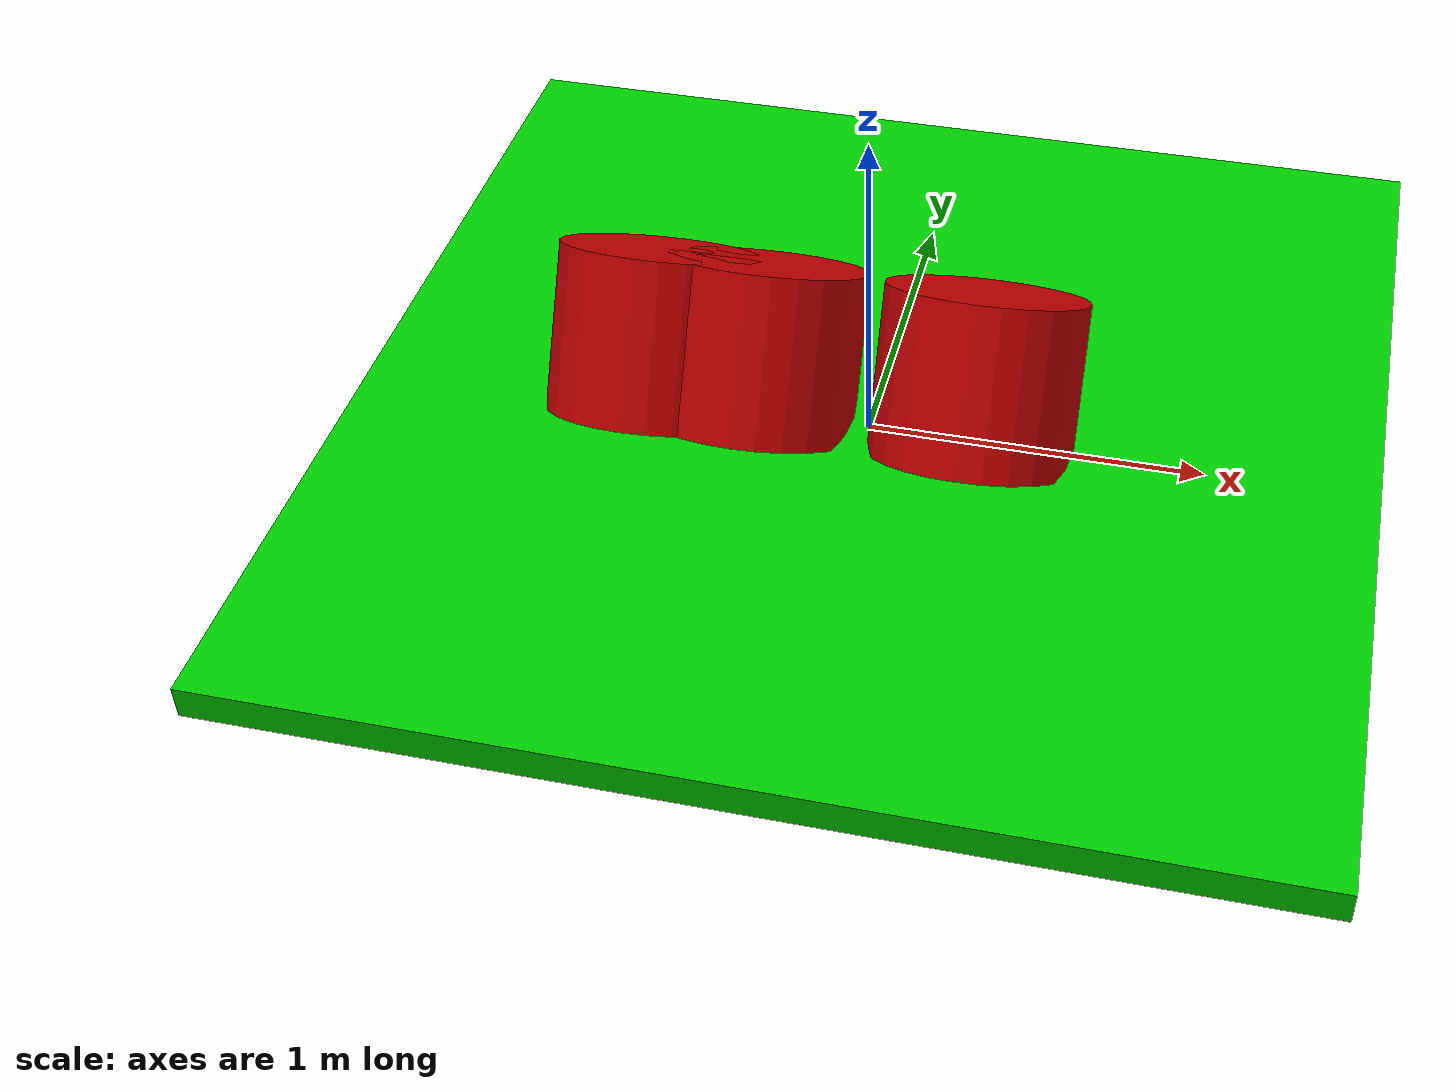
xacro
<?xml version="1.0"?>
<robot xmlns:xacro="http://www.ros.org/wiki/xacro" name="robot">
    <xacro:property name="PI" value="3.1416"/>

    <!-- Define material named "black" with RGBA color values -->
    <material name="black">
        <color rgba="0.0 0.0 0.0 1.0" />
    </material>

    <!-- Define material named "blue" with RGBA color values -->
    <material name="blue">
        <color rgba="0.0 0.0 0.8 1.0" />
    </material>

    <!-- Define material named "green" with RGBA color values -->
    <material name="green">
        <color rgba="0.0 0.8 0.0 1.0" />
    </material>

    <!-- Define material named "red" with RGBA color values -->
    <material name="red">
        <color rgba="0.8 0.0 0.0 1.0" />
    </material>

    <!-- Define link named "world" -->
    <link name="world" />

    <!-- Define link named "base" -->
    <link name="base">
        <collision>
            <origin xyz="0 0 0.05" rpy="0 0 0" />
            <geometry>
                <box size="3.0 3.0 0.1" />
            </geometry>
        </collision>
        <visual>
            <origin xyz="0 0 0.05" rpy="0 0 0" />
            <geometry>
                <box size="3.0 3.0 0.1" />
            </geometry>
            <material name="green" />
        </visual>

    </link>

    <!-- Define link named "rotor1" -->
    <link name="rotor1">
        <collision>
            <origin xyz="0 0 0" rpy="0 0 0" />
            <geometry>
                <cylinder radius="0.3" length="0.5" />
            </geometry>
        </collision>
        <visual>
            <origin xyz="0 0 0" rpy="0 0 0" />
            <geometry>
                <cylinder radius="0.3" length="0.5" />
            </geometry>
            <material name="red" />
        </visual>

    </link>

    <!-- Define link named "rotor2" -->
    <link name="rotor2">
        <collision>
            <origin xyz="0 0 0" rpy="0 0 0" />
            <geometry>
                <cylinder radius="0.3" length="0.5" />
            </geometry>
        </collision>
        <visual>
            <origin xyz="0 0 0" rpy="0 0 0" />
            <geometry>
                <cylinder radius="0.3" length="0.5" />
            </geometry>
            <material name="red" />
        </visual>

    </link>
    <link name="rotor3">
        <collision>
            <origin xyz="0 0 -0.05" rpy="0 0 0" />
            <geometry>
                <cylinder radius="0.3" length="0.5" />
            </geometry>
        </collision>
        <visual>
            <origin xyz="0 0 0" rpy="0 0 0" />
            <geometry>
                <cylinder radius="0.3" length="0.5" />
            </geometry>
            <material name="red" />
        </visual>

    </link>
    <!-- Define joint named "joint1" with type "fixed" -->
    <joint name="joint1" type="fixed">
        <parent link="world" />
        <child link="base" />
        <origin xyz="0 0 0" rpy="0 0 0" />
        <axis xyz="0 1 0" />
    </joint>

    <!-- Define joint named "joint2" with type "continuous" -->
    <joint name="joint2" type="continuous">
        <parent link="base" />
        <child link="rotor1" />
        <origin xyz="0.325 0 0.25" rpy="-0.5236 0 0" />
        <axis xyz="0 0 1" />
    </joint>

    <!-- Define joint named "joint3" with type "continuous" -->
    <joint name="joint3" type="continuous">
        <parent link="base" />
        <child link="rotor2" />
        <origin xyz="-0.325 0 0.25" rpy="-0.5236 0 0" />
        <axis xyz="0 0 1" />
    </joint>

    <joint name="joint4" type="continuous">
        <parent link="base" />
        <child link="rotor3" />
        <origin xyz="-0.65 0 0.25" rpy="-0.5236 0 0" />
        <axis xyz="0 0 1" />
    </joint>
  <ros2_control name="arduino_actuator_ros2_control" type="system">
    <hardware>
      <plugin>arduino_controller/ArduinoInterface</plugin>
        <param name="port">/dev/ttyACM0</param>

    </hardware>

    <joint name="joint2">
        <command_interface name="velocity">
        </command_interface>
        <state_interface name="velocity"/>
        <state_interface name="position"/>
    </joint>

    <joint name="joint3">
        <command_interface name="velocity">
        </command_interface>
        <state_interface name="velocity"/>
        <state_interface name="position"/>
    </joint>

    <joint name="joint4">
        <command_interface name="velocity">
        </command_interface>
        <state_interface name="velocity"/>
        <state_interface name="position"/>
    </joint>
  </ros2_control>

</robot>
